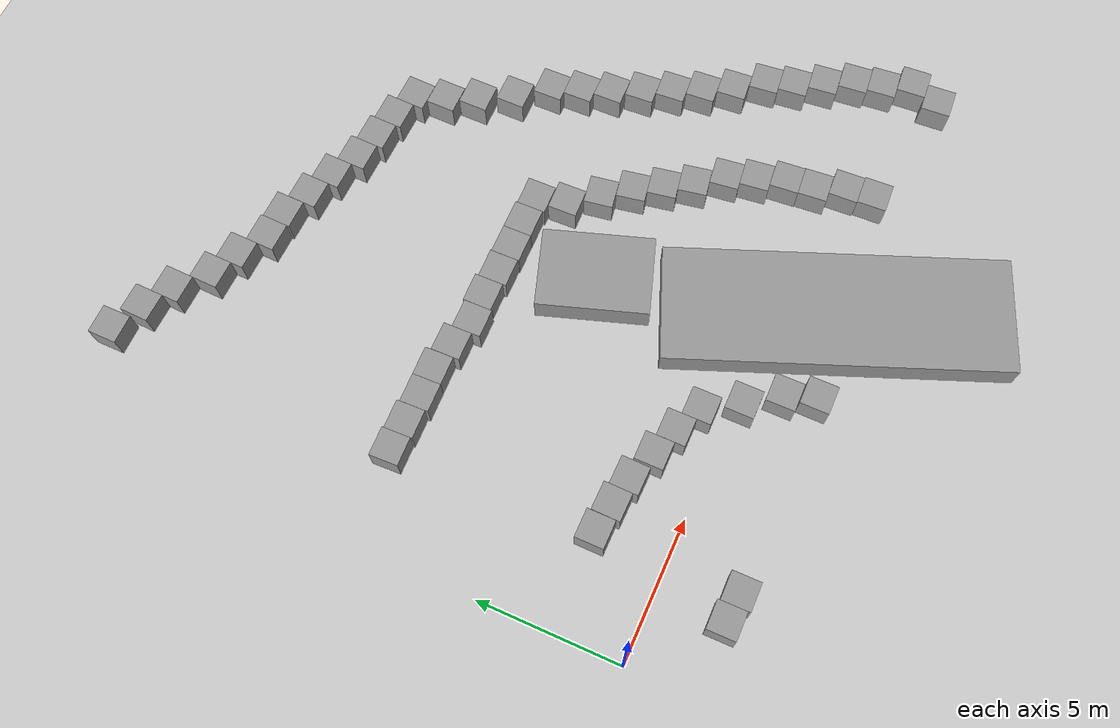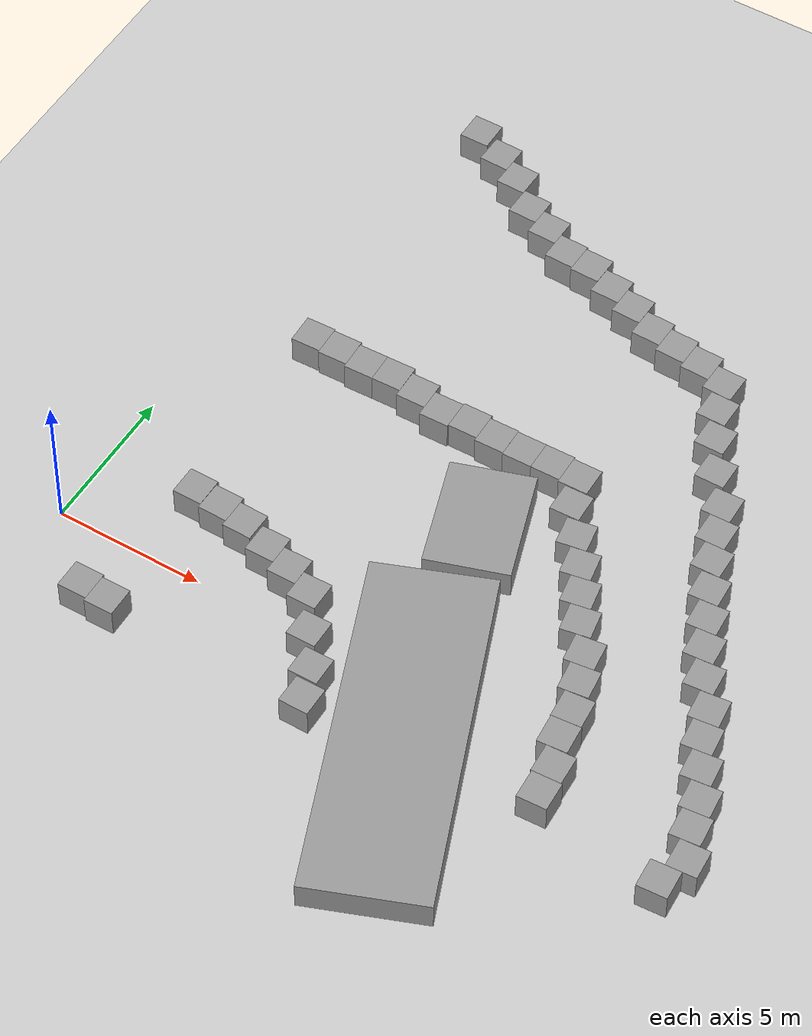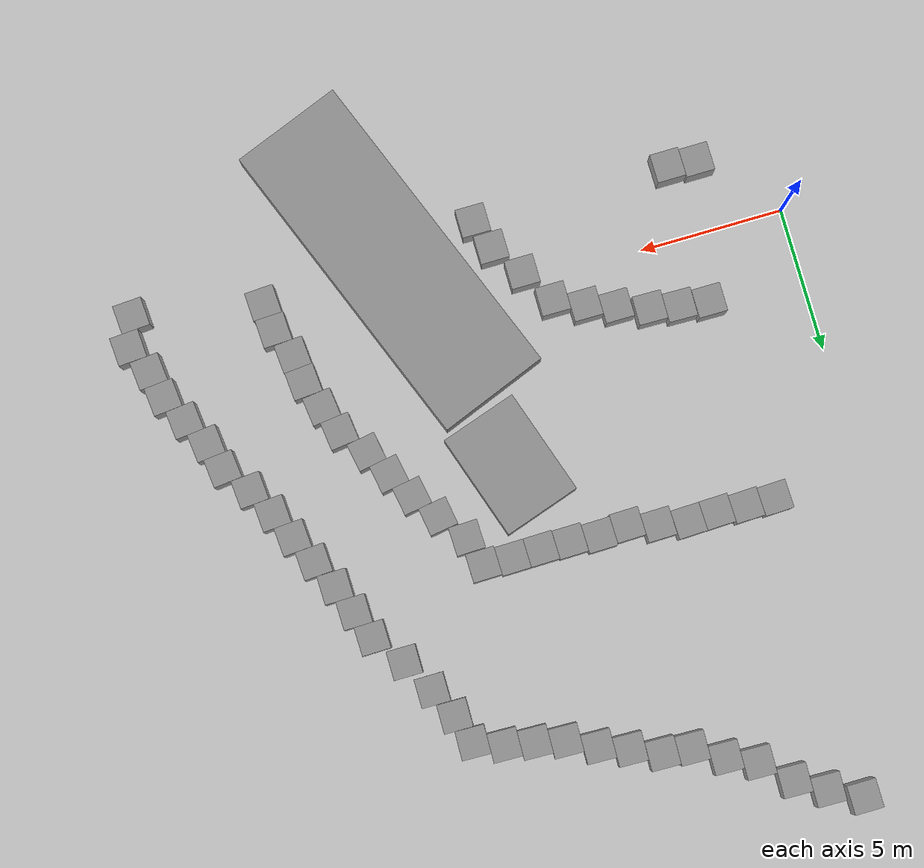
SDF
<sdf version="1.7">
 <world name="default">
  <model name="ground_plane">
   <static>1</static>
   <link name="link">
    <collision name="collision">
     <geometry><plane><normal>0 0 1</normal><size>100 100</size></plane></geometry>
     <surface>
      <contact><collide_bitmask>65535</collide_bitmask></contact>
      <friction><ode><mu>100</mu><mu2>50</mu2></ode></friction>
     </surface>
    </collision>
    <visual name="visual">
     <cast_shadows>0</cast_shadows>
     <geometry><plane><normal>0 0 1</normal><size>100 100</size></plane></geometry>
     <material>
      <script><uri>file://media/materials/scripts/gazebo.material</uri><name>Gazebo/Grey</name></script>
     </material>
    </visual>
   </link>
  </model>
  <model name="unit_box_4">
   <pose>3.37256 2.41731 0.499995 -0 -1e-05 -0.001944</pose>
   <link name="link">
    <inertial>
     <mass>1</mass>
     <inertia>
      <ixx>0.166667</ixx>
      <ixy>0</ixy>
      <ixz>0</ixz>
      <iyy>0.166667</iyy>
      <iyz>0</iyz>
      <izz>0.166667</izz>
     </inertia>
    </inertial>
    <collision name="collision"><geometry><box><size>1 1 1</size></box></geometry></collision>
    <visual name="visual">
     <geometry><box><size>1 1 1</size></box></geometry>
     <material>
      <script><name>Gazebo/Grey</name><uri>file://media/materials/scripts/gazebo.material</uri></script>
     </material>
    </visual>
   </link>
  </model>
  <model name="unit_box_14">
   <pose>2.39599 -2.35306 0.499995 0 1e-05 0.006255</pose>
   <link name="link">
    <inertial>
     <mass>1</mass>
     <inertia>
      <ixx>0.166667</ixx>
      <ixy>0</ixy>
      <ixz>0</ixz>
      <iyy>0.166667</iyy>
      <iyz>0</iyz>
      <izz>0.166667</izz>
     </inertia>
    </inertial>
    <collision name="collision"><geometry><box><size>1 1 1</size></box></geometry></collision>
    <visual name="visual">
     <geometry><box><size>1 1 1</size></box></geometry>
     <material>
      <script><name>Gazebo/Grey</name><uri>file://media/materials/scripts/gazebo.material</uri></script>
     </material>
    </visual>
   </link>
  </model>
  <model name="unit_box_15">
   <pose>3.39655 -2.43483 0.499995 1e-05 0 0.00622</pose>
   <link name="link">
    <inertial>
     <mass>1</mass>
     <inertia>
      <ixx>0.166667</ixx>
      <ixy>0</ixy>
      <ixz>0</ixz>
      <iyy>0.166667</iyy>
      <iyz>0</iyz>
      <izz>0.166667</izz>
     </inertia>
    </inertial>
    <collision name="collision"><geometry><box><size>1 1 1</size></box></geometry></collision>
    <visual name="visual">
     <geometry><box><size>1 1 1</size></box></geometry>
     <material>
      <script><name>Gazebo/Grey</name><uri>file://media/materials/scripts/gazebo.material</uri></script>
     </material>
    </visual>
   </link>
  </model>
  <model name="unit_box_20">
   <pose>4.38108 2.28355 0.499995 -1e-05 -0 -0.015499</pose>
   <link name="link">
    <inertial>
     <mass>1</mass>
     <inertia>
      <ixx>0.166667</ixx>
      <ixy>0</ixy>
      <ixz>0</ixz>
      <iyy>0.166667</iyy>
      <iyz>0</iyz>
      <izz>0.166667</izz>
     </inertia>
    </inertial>
    <collision name="collision"><geometry><box><size>1 1 1</size></box></geometry></collision>
    <visual name="visual">
     <geometry><box><size>1 1 1</size></box></geometry>
     <material>
      <script><name>Gazebo/Grey</name><uri>file://media/materials/scripts/gazebo.material</uri></script>
     </material>
    </visual>
   </link>
  </model>
  <model name="unit_box_21">
   <pose>5.37842 2.09653 0.499995 -1e-05 -0 -0.0155</pose>
   <link name="link">
    <inertial>
     <mass>1</mass>
     <inertia>
      <ixx>0.166667</ixx>
      <ixy>0</ixy>
      <ixz>0</ixz>
      <iyy>0.166667</iyy>
      <iyz>0</iyz>
      <izz>0.166667</izz>
     </inertia>
    </inertial>
    <collision name="collision"><geometry><box><size>1 1 1</size></box></geometry></collision>
    <visual name="visual">
     <geometry><box><size>1 1 1</size></box></geometry>
     <material>
      <script><name>Gazebo/Grey</name><uri>file://media/materials/scripts/gazebo.material</uri></script>
     </material>
    </visual>
   </link>
  </model>
  <model name="unit_box_22">
   <pose>6.44585 1.71084 0.499995 0 1e-05 5e-06</pose>
   <link name="link">
    <inertial>
     <mass>1</mass>
     <inertia>
      <ixx>0.166667</ixx>
      <ixy>0</ixy>
      <ixz>0</ixz>
      <iyy>0.166667</iyy>
      <iyz>0</iyz>
      <izz>0.166667</izz>
     </inertia>
    </inertial>
    <collision name="collision"><geometry><box><size>1 1 1</size></box></geometry></collision>
    <visual name="visual">
     <geometry><box><size>1 1 1</size></box></geometry>
     <material>
      <script><name>Gazebo/Grey</name><uri>file://media/materials/scripts/gazebo.material</uri></script>
     </material>
    </visual>
   </link>
  </model>
  <model name="unit_box_23">
   <pose>7.44649 1.36321 0.499995 -1e-05 -0 5e-06</pose>
   <link name="link">
    <inertial>
     <mass>1</mass>
     <inertia>
      <ixx>0.166667</ixx>
      <ixy>0</ixy>
      <ixz>0</ixz>
      <iyy>0.166667</iyy>
      <iyz>0</iyz>
      <izz>0.166667</izz>
     </inertia>
    </inertial>
    <collision name="collision"><geometry><box><size>1 1 1</size></box></geometry></collision>
    <visual name="visual">
     <geometry><box><size>1 1 1</size></box></geometry>
     <material>
      <script><name>Gazebo/Grey</name><uri>file://media/materials/scripts/gazebo.material</uri></script>
     </material>
    </visual>
   </link>
  </model>
  <model name="unit_box_24">
   <pose>8.44685 0.885138 0.499995 0 1e-05 5e-06</pose>
   <link name="link">
    <inertial>
     <mass>1</mass>
     <inertia>
      <ixx>0.166667</ixx>
      <ixy>0</ixy>
      <ixz>0</ixz>
      <iyy>0.166667</iyy>
      <iyz>0</iyz>
      <izz>0.166667</izz>
     </inertia>
    </inertial>
    <collision name="collision"><geometry><box><size>1 1 1</size></box></geometry></collision>
    <visual name="visual">
     <geometry><box><size>1 1 1</size></box></geometry>
     <material>
      <script><name>Gazebo/Grey</name><uri>file://media/materials/scripts/gazebo.material</uri></script>
     </material>
    </visual>
   </link>
  </model>
  <model name="unit_box_25">
   <pose>9.18635 -0.29044 0.499995 -1e-05 -0 5e-06</pose>
   <link name="link">
    <inertial>
     <mass>1</mass>
     <inertia>
      <ixx>0.166667</ixx>
      <ixy>0</ixy>
      <ixz>0</ixz>
      <iyy>0.166667</iyy>
      <iyz>0</iyz>
      <izz>0.166667</izz>
     </inertia>
    </inertial>
    <collision name="collision"><geometry><box><size>1 1 1</size></box></geometry></collision>
    <visual name="visual">
     <geometry><box><size>1 1 1</size></box></geometry>
     <material>
      <script><name>Gazebo/Grey</name><uri>file://media/materials/scripts/gazebo.material</uri></script>
     </material>
    </visual>
   </link>
  </model>
  <model name="unit_box_26">
   <pose>9.95454 -1.40481 0.499995 1e-05 -0 0.004582</pose>
   <link name="link">
    <inertial>
     <mass>1</mass>
     <inertia>
      <ixx>0.166667</ixx>
      <ixy>0</ixy>
      <ixz>0</ixz>
      <iyy>0.166667</iyy>
      <iyz>0</iyz>
      <izz>0.166667</izz>
     </inertia>
    </inertial>
    <collision name="collision"><geometry><box><size>1 1 1</size></box></geometry></collision>
    <visual name="visual">
     <geometry><box><size>1 1 1</size></box></geometry>
     <material>
      <script><name>Gazebo/Grey</name><uri>file://media/materials/scripts/gazebo.material</uri></script>
     </material>
    </visual>
   </link>
  </model>
  <model name="unit_box_27">
   <pose>10.305 -2.44806 0.499995 -1e-05 -0 5e-06</pose>
   <link name="link">
    <inertial>
     <mass>1</mass>
     <inertia>
      <ixx>0.166667</ixx>
      <ixy>0</ixy>
      <ixz>0</ixz>
      <iyy>0.166667</iyy>
      <iyz>0</iyz>
      <izz>0.166667</izz>
     </inertia>
    </inertial>
    <collision name="collision"><geometry><box><size>1 1 1</size></box></geometry></collision>
    <visual name="visual">
     <geometry><box><size>1 1 1</size></box></geometry>
     <material>
      <script><name>Gazebo/Grey</name><uri>file://media/materials/scripts/gazebo.material</uri></script>
     </material>
    </visual>
   </link>
  </model>
  <model name="unit_box_32_clone_22">
   <pose>17.9148 -1.70228 0.5 0 -0 0.04637</pose>
   <link name="link">
    <inertial>
     <mass>1</mass>
     <inertia>
      <ixx>0.166667</ixx>
      <ixy>0</ixy>
      <ixz>0</ixz>
      <iyy>0.166667</iyy>
      <iyz>0</iyz>
      <izz>0.166667</izz>
     </inertia>
    </inertial>
    <collision name="collision"><geometry><box><size>1 1 1</size></box></geometry></collision>
    <visual name="visual">
     <geometry><box><size>1 1 1</size></box></geometry>
     <material>
      <script><name>Gazebo/Grey</name><uri>file://media/materials/scripts/gazebo.material</uri></script>
     </material>
    </visual>
   </link>
  </model>
  <model name="unit_box_32_clone_23">
   <pose>17.822 -0.705491 0.499995 -0 -1e-05 0.046421</pose>
   <link name="link">
    <inertial>
     <mass>1</mass>
     <inertia>
      <ixx>0.166667</ixx>
      <ixy>0</ixy>
      <ixz>0</ixz>
      <iyy>0.166667</iyy>
      <iyz>0</iyz>
      <izz>0.166667</izz>
     </inertia>
    </inertial>
    <collision name="collision"><geometry><box><size>1 1 1</size></box></geometry></collision>
    <visual name="visual">
     <geometry><box><size>1 1 1</size></box></geometry>
     <material>
      <script><name>Gazebo/Grey</name><uri>file://media/materials/scripts/gazebo.material</uri></script>
     </material>
    </visual>
   </link>
  </model>
  <model name="unit_box_32_clone_24">
   <pose>17.4264 0.282866 0.5 0 -0 0.081788</pose>
   <link name="link">
    <inertial>
     <mass>1</mass>
     <inertia>
      <ixx>0.166667</ixx>
      <ixy>0</ixy>
      <ixz>0</ixz>
      <iyy>0.166667</iyy>
      <iyz>0</iyz>
      <izz>0.166667</izz>
     </inertia>
    </inertial>
    <collision name="collision"><geometry><box><size>1 1 1</size></box></geometry></collision>
    <visual name="visual">
     <geometry><box><size>1 1 1</size></box></geometry>
     <material>
      <script><name>Gazebo/Grey</name><uri>file://media/materials/scripts/gazebo.material</uri></script>
     </material>
    </visual>
   </link>
  </model>
  <model name="unit_box_32_clone_25">
   <pose>17.3247 1.27792 0.5 0 -0 0.08186</pose>
   <link name="link">
    <inertial>
     <mass>1</mass>
     <inertia>
      <ixx>0.166667</ixx>
      <ixy>0</ixy>
      <ixz>0</ixz>
      <iyy>0.166667</iyy>
      <iyz>0</iyz>
      <izz>0.166667</izz>
     </inertia>
    </inertial>
    <collision name="collision"><geometry><box><size>1 1 1</size></box></geometry></collision>
    <visual name="visual">
     <geometry><box><size>1 1 1</size></box></geometry>
     <material>
      <script><name>Gazebo/Grey</name><uri>file://media/materials/scripts/gazebo.material</uri></script>
     </material>
    </visual>
   </link>
  </model>
  <model name="unit_box_32_clone_26">
   <pose>16.9722 2.26184 0.499995 -0 1e-05 0.121367</pose>
   <link name="link">
    <inertial>
     <mass>1</mass>
     <inertia>
      <ixx>0.166667</ixx>
      <ixy>0</ixy>
      <ixz>0</ixz>
      <iyy>0.166667</iyy>
      <iyz>0</iyz>
      <izz>0.166667</izz>
     </inertia>
    </inertial>
    <collision name="collision"><geometry><box><size>1 1 1</size></box></geometry></collision>
    <visual name="visual">
     <geometry><box><size>1 1 1</size></box></geometry>
     <material>
      <script><name>Gazebo/Grey</name><uri>file://media/materials/scripts/gazebo.material</uri></script>
     </material>
    </visual>
   </link>
  </model>
  <model name="unit_box_32_clone_27">
   <pose>16.6091 3.22503 0.5 0 -0 0.121596</pose>
   <link name="link">
    <inertial>
     <mass>1</mass>
     <inertia>
      <ixx>0.166667</ixx>
      <ixy>0</ixy>
      <ixz>0</ixz>
      <iyy>0.166667</iyy>
      <iyz>0</iyz>
      <izz>0.166667</izz>
     </inertia>
    </inertial>
    <collision name="collision"><geometry><box><size>1 1 1</size></box></geometry></collision>
    <visual name="visual">
     <geometry><box><size>1 1 1</size></box></geometry>
     <material>
      <script><name>Gazebo/Grey</name><uri>file://media/materials/scripts/gazebo.material</uri></script>
     </material>
    </visual>
   </link>
  </model>
  <model name="unit_box_32_clone_28">
   <pose>15.9248 4.1459 0.5 0 -0 0.175625</pose>
   <link name="link">
    <inertial>
     <mass>1</mass>
     <inertia>
      <ixx>0.166667</ixx>
      <ixy>0</ixy>
      <ixz>0</ixz>
      <iyy>0.166667</iyy>
      <iyz>0</iyz>
      <izz>0.166667</izz>
     </inertia>
    </inertial>
    <collision name="collision"><geometry><box><size>1 1 1</size></box></geometry></collision>
    <visual name="visual">
     <geometry><box><size>1 1 1</size></box></geometry>
     <material>
      <script><name>Gazebo/Grey</name><uri>file://media/materials/scripts/gazebo.material</uri></script>
     </material>
    </visual>
   </link>
  </model>
  <model name="unit_box_32_clone_29">
   <pose>15.4032 5.06902 0.499995 1e-05 -0 0.175627</pose>
   <link name="link">
    <inertial>
     <mass>1</mass>
     <inertia>
      <ixx>0.166667</ixx>
      <ixy>0</ixy>
      <ixz>0</ixz>
      <iyy>0.166667</iyy>
      <iyz>0</iyz>
      <izz>0.166667</izz>
     </inertia>
    </inertial>
    <collision name="collision"><geometry><box><size>1 1 1</size></box></geometry></collision>
    <visual name="visual">
     <geometry><box><size>1 1 1</size></box></geometry>
     <material>
      <script><name>Gazebo/Grey</name><uri>file://media/materials/scripts/gazebo.material</uri></script>
     </material>
    </visual>
   </link>
  </model>
  <model name="unit_box_32_clone_30">
   <pose>14.8669 5.98949 0.499995 1e-05 -0 0.175604</pose>
   <link name="link">
    <inertial>
     <mass>1</mass>
     <inertia>
      <ixx>0.166667</ixx>
      <ixy>0</ixy>
      <ixz>0</ixz>
      <iyy>0.166667</iyy>
      <iyz>0</iyz>
      <izz>0.166667</izz>
     </inertia>
    </inertial>
    <collision name="collision"><geometry><box><size>1 1 1</size></box></geometry></collision>
    <visual name="visual">
     <geometry><box><size>1 1 1</size></box></geometry>
     <material>
      <script><name>Gazebo/Grey</name><uri>file://media/materials/scripts/gazebo.material</uri></script>
     </material>
    </visual>
   </link>
  </model>
  <model name="unit_box_32_clone_31">
   <pose>14.216 6.89907 0.499996 -9e-06 0 0.157062</pose>
   <link name="link">
    <inertial>
     <mass>1</mass>
     <inertia>
      <ixx>0.166667</ixx>
      <ixy>0</ixy>
      <ixz>0</ixz>
      <iyy>0.166667</iyy>
      <iyz>0</iyz>
      <izz>0.166667</izz>
     </inertia>
    </inertial>
    <collision name="collision"><geometry><box><size>1 1 1</size></box></geometry></collision>
    <visual name="visual">
     <geometry><box><size>1 1 1</size></box></geometry>
     <material>
      <script><name>Gazebo/Grey</name><uri>file://media/materials/scripts/gazebo.material</uri></script>
     </material>
    </visual>
   </link>
  </model>
  <model name="unit_box_32_clone_32">
   <pose>13.4893 7.85691 0.5 0 -0 0.029155</pose>
   <link name="link">
    <inertial>
     <mass>1</mass>
     <inertia>
      <ixx>0.166667</ixx>
      <ixy>0</ixy>
      <ixz>0</ixz>
      <iyy>0.166667</iyy>
      <iyz>0</iyz>
      <izz>0.166667</izz>
     </inertia>
    </inertial>
    <collision name="collision"><geometry><box><size>1 1 1</size></box></geometry></collision>
    <visual name="visual">
     <geometry><box><size>1 1 1</size></box></geometry>
     <material>
      <script><name>Gazebo/Grey</name><uri>file://media/materials/scripts/gazebo.material</uri></script>
     </material>
    </visual>
   </link>
  </model>
  <model name="unit_box_32_clone_33">
   <pose>13.1982 8.87655 0.499995 1e-05 -0 0.01535</pose>
   <link name="link">
    <inertial>
     <mass>1</mass>
     <inertia>
      <ixx>0.166667</ixx>
      <ixy>0</ixy>
      <ixz>0</ixz>
      <iyy>0.166667</iyy>
      <iyz>0</iyz>
      <izz>0.166667</izz>
     </inertia>
    </inertial>
    <collision name="collision"><geometry><box><size>1 1 1</size></box></geometry></collision>
    <visual name="visual">
     <geometry><box><size>1 1 1</size></box></geometry>
     <material>
      <script><name>Gazebo/Grey</name><uri>file://media/materials/scripts/gazebo.material</uri></script>
     </material>
    </visual>
   </link>
  </model>
  <model name="unit_box_32_clone_62">
   <pose>22.3137 -2.52257 0.499995 0 1e-05 0.065898</pose>
   <link name="link">
    <inertial>
     <mass>1</mass>
     <inertia>
      <ixx>0.166667</ixx>
      <ixy>0</ixy>
      <ixz>0</ixz>
      <iyy>0.166667</iyy>
      <iyz>0</iyz>
      <izz>0.166667</izz>
     </inertia>
    </inertial>
    <collision name="collision"><geometry><box><size>1 1 1</size></box></geometry></collision>
    <visual name="visual">
     <geometry><box><size>1 1 1</size></box></geometry>
     <material>
      <script><name>Gazebo/Grey</name><uri>file://media/materials/scripts/gazebo.material</uri></script>
     </material>
    </visual>
   </link>
  </model>
  <model name="unit_box_32_clone_63">
   <pose>22.6975 -1.49507 0.499995 0 1e-05 0.065895</pose>
   <link name="link">
    <inertial>
     <mass>1</mass>
     <inertia>
      <ixx>0.166667</ixx>
      <ixy>0</ixy>
      <ixz>0</ixz>
      <iyy>0.166667</iyy>
      <iyz>0</iyz>
      <izz>0.166667</izz>
     </inertia>
    </inertial>
    <collision name="collision"><geometry><box><size>1 1 1</size></box></geometry></collision>
    <visual name="visual">
     <geometry><box><size>1 1 1</size></box></geometry>
     <material>
      <script><name>Gazebo/Grey</name><uri>file://media/materials/scripts/gazebo.material</uri></script>
     </material>
    </visual>
   </link>
  </model>
  <model name="unit_box_32_clone_64">
   <pose>22.2486 -0.518726 0.5 0 -0 0.096344</pose>
   <link name="link">
    <inertial>
     <mass>1</mass>
     <inertia>
      <ixx>0.166667</ixx>
      <ixy>0</ixy>
      <ixz>0</ixz>
      <iyy>0.166667</iyy>
      <iyz>0</iyz>
      <izz>0.166667</izz>
     </inertia>
    </inertial>
    <collision name="collision"><geometry><box><size>1 1 1</size></box></geometry></collision>
    <visual name="visual">
     <geometry><box><size>1 1 1</size></box></geometry>
     <material>
      <script><name>Gazebo/Grey</name><uri>file://media/materials/scripts/gazebo.material</uri></script>
     </material>
    </visual>
   </link>
  </model>
  <model name="unit_box_32_clone_65">
   <pose>22.0112 0.462989 0.499995 0 -1e-05 0.096353</pose>
   <link name="link">
    <inertial>
     <mass>1</mass>
     <inertia>
      <ixx>0.166667</ixx>
      <ixy>0</ixy>
      <ixz>0</ixz>
      <iyy>0.166667</iyy>
      <iyz>0</iyz>
      <izz>0.166667</izz>
     </inertia>
    </inertial>
    <collision name="collision"><geometry><box><size>1 1 1</size></box></geometry></collision>
    <visual name="visual">
     <geometry><box><size>1 1 1</size></box></geometry>
     <material>
      <script><name>Gazebo/Grey</name><uri>file://media/materials/scripts/gazebo.material</uri></script>
     </material>
    </visual>
   </link>
  </model>
  <model name="unit_box_32_clone_66">
   <pose>21.5224 1.42156 0.5 0 -0 0.106877</pose>
   <link name="link">
    <inertial>
     <mass>1</mass>
     <inertia>
      <ixx>0.166667</ixx>
      <ixy>0</ixy>
      <ixz>0</ixz>
      <iyy>0.166667</iyy>
      <iyz>0</iyz>
      <izz>0.166667</izz>
     </inertia>
    </inertial>
    <collision name="collision"><geometry><box><size>1 1 1</size></box></geometry></collision>
    <visual name="visual">
     <geometry><box><size>1 1 1</size></box></geometry>
     <material>
      <script><name>Gazebo/Grey</name><uri>file://media/materials/scripts/gazebo.material</uri></script>
     </material>
    </visual>
   </link>
  </model>
  <model name="unit_box_32_clone_67">
   <pose>21.0281 2.37426 0.5 0 -0 0.106894</pose>
   <link name="link">
    <inertial>
     <mass>1</mass>
     <inertia>
      <ixx>0.166667</ixx>
      <ixy>0</ixy>
      <ixz>0</ixz>
      <iyy>0.166667</iyy>
      <iyz>0</iyz>
      <izz>0.166667</izz>
     </inertia>
    </inertial>
    <collision name="collision"><geometry><box><size>1 1 1</size></box></geometry></collision>
    <visual name="visual">
     <geometry><box><size>1 1 1</size></box></geometry>
     <material>
      <script><name>Gazebo/Grey</name><uri>file://media/materials/scripts/gazebo.material</uri></script>
     </material>
    </visual>
   </link>
  </model>
  <model name="unit_box_32_clone_68">
   <pose>20.724 3.34739 0.5 0 -0 0.106952</pose>
   <link name="link">
    <inertial>
     <mass>1</mass>
     <inertia>
      <ixx>0.166667</ixx>
      <ixy>0</ixy>
      <ixz>0</ixz>
      <iyy>0.166667</iyy>
      <iyz>0</iyz>
      <izz>0.166667</izz>
     </inertia>
    </inertial>
    <collision name="collision"><geometry><box><size>1 1 1</size></box></geometry></collision>
    <visual name="visual">
     <geometry><box><size>1 1 1</size></box></geometry>
     <material>
      <script><name>Gazebo/Grey</name><uri>file://media/materials/scripts/gazebo.material</uri></script>
     </material>
    </visual>
   </link>
  </model>
  <model name="unit_box_32_clone_69">
   <pose>20.0439 4.29385 0.5 0 -0 0.079277</pose>
   <link name="link">
    <inertial>
     <mass>1</mass>
     <inertia>
      <ixx>0.166667</ixx>
      <ixy>0</ixy>
      <ixz>0</ixz>
      <iyy>0.166667</iyy>
      <iyz>0</iyz>
      <izz>0.166667</izz>
     </inertia>
    </inertial>
    <collision name="collision"><geometry><box><size>1 1 1</size></box></geometry></collision>
    <visual name="visual">
     <geometry><box><size>1 1 1</size></box></geometry>
     <material>
      <script><name>Gazebo/Grey</name><uri>file://media/materials/scripts/gazebo.material</uri></script>
     </material>
    </visual>
   </link>
  </model>
  <model name="unit_box_32_clone_70">
   <pose>19.5211 5.26005 0.5 0 -0 0.070104</pose>
   <link name="link">
    <inertial>
     <mass>1</mass>
     <inertia>
      <ixx>0.166667</ixx>
      <ixy>0</ixy>
      <ixz>0</ixz>
      <iyy>0.166667</iyy>
      <iyz>0</iyz>
      <izz>0.166667</izz>
     </inertia>
    </inertial>
    <collision name="collision"><geometry><box><size>1 1 1</size></box></geometry></collision>
    <visual name="visual">
     <geometry><box><size>1 1 1</size></box></geometry>
     <material>
      <script><name>Gazebo/Grey</name><uri>file://media/materials/scripts/gazebo.material</uri></script>
     </material>
    </visual>
   </link>
  </model>
  <model name="unit_box_32_clone_71">
   <pose>19.0888 6.23225 0.5 0 -0 0.069936</pose>
   <link name="link">
    <inertial>
     <mass>1</mass>
     <inertia>
      <ixx>0.166667</ixx>
      <ixy>0</ixy>
      <ixz>0</ixz>
      <iyy>0.166667</iyy>
      <iyz>0</iyz>
      <izz>0.166667</izz>
     </inertia>
    </inertial>
    <collision name="collision"><geometry><box><size>1 1 1</size></box></geometry></collision>
    <visual name="visual">
     <geometry><box><size>1 1 1</size></box></geometry>
     <material>
      <script><name>Gazebo/Grey</name><uri>file://media/materials/scripts/gazebo.material</uri></script>
     </material>
    </visual>
   </link>
  </model>
  <model name="unit_box_32_clone_72">
   <pose>18.6259 7.20626 0.499995 0 -1e-05 0.061955</pose>
   <link name="link">
    <inertial>
     <mass>1</mass>
     <inertia>
      <ixx>0.166667</ixx>
      <ixy>0</ixy>
      <ixz>0</ixz>
      <iyy>0.166667</iyy>
      <iyz>0</iyz>
      <izz>0.166667</izz>
     </inertia>
    </inertial>
    <collision name="collision"><geometry><box><size>1 1 1</size></box></geometry></collision>
    <visual name="visual">
     <geometry><box><size>1 1 1</size></box></geometry>
     <material>
      <script><name>Gazebo/Grey</name><uri>file://media/materials/scripts/gazebo.material</uri></script>
     </material>
    </visual>
   </link>
  </model>
  <model name="unit_box_32_clone_73">
   <pose>18.1671 8.20073 0.499995 -0 1e-05 0.019098</pose>
   <link name="link">
    <inertial>
     <mass>1</mass>
     <inertia>
      <ixx>0.166667</ixx>
      <ixy>0</ixy>
      <ixz>0</ixz>
      <iyy>0.166667</iyy>
      <iyz>0</iyz>
      <izz>0.166667</izz>
     </inertia>
    </inertial>
    <collision name="collision"><geometry><box><size>1 1 1</size></box></geometry></collision>
    <visual name="visual">
     <geometry><box><size>1 1 1</size></box></geometry>
     <material>
      <script><name>Gazebo/Grey</name><uri>file://media/materials/scripts/gazebo.material</uri></script>
     </material>
    </visual>
   </link>
  </model>
  <model name="unit_box_32_clone_74">
   <pose>17.7908 9.19385 0.499995 0 -1e-05 0.018831</pose>
   <link name="link">
    <inertial>
     <mass>1</mass>
     <inertia>
      <ixx>0.166667</ixx>
      <ixy>0</ixy>
      <ixz>0</ixz>
      <iyy>0.166667</iyy>
      <iyz>0</iyz>
      <izz>0.166667</izz>
     </inertia>
    </inertial>
    <collision name="collision"><geometry><box><size>1 1 1</size></box></geometry></collision>
    <visual name="visual">
     <geometry><box><size>1 1 1</size></box></geometry>
     <material>
      <script><name>Gazebo/Grey</name><uri>file://media/materials/scripts/gazebo.material</uri></script>
     </material>
    </visual>
   </link>
  </model>
  <model name="unit_box_32_clone_75">
   <pose>17.4381 10.1874 0.499995 0 -1e-05 0.018837</pose>
   <link name="link">
    <inertial>
     <mass>1</mass>
     <inertia>
      <ixx>0.166667</ixx>
      <ixy>0</ixy>
      <ixz>0</ixz>
      <iyy>0.166667</iyy>
      <iyz>0</iyz>
      <izz>0.166667</izz>
     </inertia>
    </inertial>
    <collision name="collision"><geometry><box><size>1 1 1</size></box></geometry></collision>
    <visual name="visual">
     <geometry><box><size>1 1 1</size></box></geometry>
     <material>
      <script><name>Gazebo/Grey</name><uri>file://media/materials/scripts/gazebo.material</uri></script>
     </material>
    </visual>
   </link>
  </model>
  <model name="unit_box_32_clone_76">
   <pose>16.6369 11.2615 0.499995 1e-05 0 0.001329</pose>
   <link name="link">
    <inertial>
     <mass>1</mass>
     <inertia>
      <ixx>0.166667</ixx>
      <ixy>0</ixy>
      <ixz>0</ixz>
      <iyy>0.166667</iyy>
      <iyz>0</iyz>
      <izz>0.166667</izz>
     </inertia>
    </inertial>
    <collision name="collision"><geometry><box><size>1 1 1</size></box></geometry></collision>
    <visual name="visual">
     <geometry><box><size>1 1 1</size></box></geometry>
     <material>
      <script><name>Gazebo/Grey</name><uri>file://media/materials/scripts/gazebo.material</uri></script>
     </material>
    </visual>
   </link>
  </model>
  <model name="unit_box_32_clone_77">
   <pose>16 12.4104 0.499995 1e-05 -0 0.001324</pose>
   <link name="link">
    <inertial>
     <mass>1</mass>
     <inertia>
      <ixx>0.166667</ixx>
      <ixy>0</ixy>
      <ixz>0</ixz>
      <iyy>0.166667</iyy>
      <iyz>0</iyz>
      <izz>0.166667</izz>
     </inertia>
    </inertial>
    <collision name="collision"><geometry><box><size>1 1 1</size></box></geometry></collision>
    <visual name="visual">
     <geometry><box><size>1 1 1</size></box></geometry>
     <material>
      <script><name>Gazebo/Grey</name><uri>file://media/materials/scripts/gazebo.material</uri></script>
     </material>
    </visual>
   </link>
  </model>
  <model name="unit_box_32_clone_78">
   <pose>15.5142 13.4334 0.499995 -0 -1e-05 -0.008252</pose>
   <link name="link">
    <inertial>
     <mass>1</mass>
     <inertia>
      <ixx>0.166667</ixx>
      <ixy>0</ixy>
      <ixz>0</ixz>
      <iyy>0.166667</iyy>
      <iyz>0</iyz>
      <izz>0.166667</izz>
     </inertia>
    </inertial>
    <collision name="collision"><geometry><box><size>1 1 1</size></box></geometry></collision>
    <visual name="visual">
     <geometry><box><size>1 1 1</size></box></geometry>
     <material>
      <script><name>Gazebo/Grey</name><uri>file://media/materials/scripts/gazebo.material</uri></script>
     </material>
    </visual>
   </link>
  </model>
  <model name="unit_box_32_clone_78_clone">
   <pose>15.1792 14.4473 0.499995 -0 1e-05 -0.025634</pose>
   <link name="link">
    <inertial>
     <mass>1</mass>
     <inertia>
      <ixx>0.166667</ixx>
      <ixy>0</ixy>
      <ixz>0</ixz>
      <iyy>0.166667</iyy>
      <iyz>0</iyz>
      <izz>0.166667</izz>
     </inertia>
    </inertial>
    <collision name="collision"><geometry><box><size>1 1 1</size></box></geometry></collision>
    <visual name="visual">
     <geometry><box><size>1 1 1</size></box></geometry>
     <material>
      <script><name>Gazebo/Grey</name><uri>file://media/materials/scripts/gazebo.material</uri></script>
     </material>
    </visual>
   </link>
  </model>
  <model name="unit_box_32_clone_78_clone_0">
   <pose>14.1883 14.8167 0.499995 1e-05 -0 -0.025672</pose>
   <link name="link">
    <inertial>
     <mass>1</mass>
     <inertia>
      <ixx>0.166667</ixx>
      <ixy>0</ixy>
      <ixz>0</ixz>
      <iyy>0.166667</iyy>
      <iyz>0</iyz>
      <izz>0.166667</izz>
     </inertia>
    </inertial>
    <collision name="collision"><geometry><box><size>1 1 1</size></box></geometry></collision>
    <visual name="visual">
     <geometry><box><size>1 1 1</size></box></geometry>
     <material>
      <script><name>Gazebo/Grey</name><uri>file://media/materials/scripts/gazebo.material</uri></script>
     </material>
    </visual>
   </link>
  </model>
  <model name="unit_box_32_clone_78_clone_1">
   <pose>13.1928 15.0087 0.5 0 0 -0.026163</pose>
   <link name="link">
    <inertial>
     <mass>1</mass>
     <inertia>
      <ixx>0.166667</ixx>
      <ixy>0</ixy>
      <ixz>0</ixz>
      <iyy>0.166667</iyy>
      <iyz>0</iyz>
      <izz>0.166667</izz>
     </inertia>
    </inertial>
    <collision name="collision"><geometry><box><size>1 1 1</size></box></geometry></collision>
    <visual name="visual">
     <geometry><box><size>1 1 1</size></box></geometry>
     <material>
      <script><name>Gazebo/Grey</name><uri>file://media/materials/scripts/gazebo.material</uri></script>
     </material>
    </visual>
   </link>
  </model>
  <model name="unit_box_32_clone_78_clone_2">
   <pose>12.1985 15.2466 0.499995 -1e-05 -0 -0.026654</pose>
   <link name="link">
    <inertial>
     <mass>1</mass>
     <inertia>
      <ixx>0.166667</ixx>
      <ixy>0</ixy>
      <ixz>0</ixz>
      <iyy>0.166667</iyy>
      <iyz>0</iyz>
      <izz>0.166667</izz>
     </inertia>
    </inertial>
    <collision name="collision"><geometry><box><size>1 1 1</size></box></geometry></collision>
    <visual name="visual">
     <geometry><box><size>1 1 1</size></box></geometry>
     <material>
      <script><name>Gazebo/Grey</name><uri>file://media/materials/scripts/gazebo.material</uri></script>
     </material>
    </visual>
   </link>
  </model>
  <model name="unit_box_32_clone_78_clone_3">
   <pose>11.2109 15.7269 0.499995 -0 -1e-05 -0.027525</pose>
   <link name="link">
    <inertial>
     <mass>1</mass>
     <inertia>
      <ixx>0.166667</ixx>
      <ixy>0</ixy>
      <ixz>0</ixz>
      <iyy>0.166667</iyy>
      <iyz>0</iyz>
      <izz>0.166667</izz>
     </inertia>
    </inertial>
    <collision name="collision"><geometry><box><size>1 1 1</size></box></geometry></collision>
    <visual name="visual">
     <geometry><box><size>1 1 1</size></box></geometry>
     <material>
      <script><name>Gazebo/Grey</name><uri>file://media/materials/scripts/gazebo.material</uri></script>
     </material>
    </visual>
   </link>
  </model>
  <model name="unit_box_32_clone_78_clone_4">
   <pose>10.2209 16.104 0.499995 0 -1e-05 -0.027539</pose>
   <link name="link">
    <inertial>
     <mass>1</mass>
     <inertia>
      <ixx>0.166667</ixx>
      <ixy>0</ixy>
      <ixz>0</ixz>
      <iyy>0.166667</iyy>
      <iyz>0</iyz>
      <izz>0.166667</izz>
     </inertia>
    </inertial>
    <collision name="collision"><geometry><box><size>1 1 1</size></box></geometry></collision>
    <visual name="visual">
     <geometry><box><size>1 1 1</size></box></geometry>
     <material>
      <script><name>Gazebo/Grey</name><uri>file://media/materials/scripts/gazebo.material</uri></script>
     </material>
    </visual>
   </link>
  </model>
  <model name="unit_box_32_clone_78_clone_5">
   <pose>9.22749 16.5398 0.499995 -1e-05 -0 -0.024646</pose>
   <link name="link">
    <inertial>
     <mass>1</mass>
     <inertia>
      <ixx>0.166667</ixx>
      <ixy>0</ixy>
      <ixz>0</ixz>
      <iyy>0.166667</iyy>
      <iyz>0</iyz>
      <izz>0.166667</izz>
     </inertia>
    </inertial>
    <collision name="collision"><geometry><box><size>1 1 1</size></box></geometry></collision>
    <visual name="visual">
     <geometry><box><size>1 1 1</size></box></geometry>
     <material>
      <script><name>Gazebo/Grey</name><uri>file://media/materials/scripts/gazebo.material</uri></script>
     </material>
    </visual>
   </link>
  </model>
  <model name="unit_box_32_clone_78_clone_6">
   <pose>8.22963 16.6393 0.499995 0 -1e-05 -0.024646</pose>
   <link name="link">
    <inertial>
     <mass>1</mass>
     <inertia>
      <ixx>0.166667</ixx>
      <ixy>0</ixy>
      <ixz>0</ixz>
      <iyy>0.166667</iyy>
      <iyz>0</iyz>
      <izz>0.166667</izz>
     </inertia>
    </inertial>
    <collision name="collision"><geometry><box><size>1 1 1</size></box></geometry></collision>
    <visual name="visual">
     <geometry><box><size>1 1 1</size></box></geometry>
     <material>
      <script><name>Gazebo/Grey</name><uri>file://media/materials/scripts/gazebo.material</uri></script>
     </material>
    </visual>
   </link>
  </model>
  <model name="unit_box_32_clone_78_clone_7">
   <pose>7.24435 17.2475 0.5 0 0 -0.024982</pose>
   <link name="link">
    <inertial>
     <mass>1</mass>
     <inertia>
      <ixx>0.166667</ixx>
      <ixy>0</ixy>
      <ixz>0</ixz>
      <iyy>0.166667</iyy>
      <iyz>0</iyz>
      <izz>0.166667</izz>
     </inertia>
    </inertial>
    <collision name="collision"><geometry><box><size>1 1 1</size></box></geometry></collision>
    <visual name="visual">
     <geometry><box><size>1 1 1</size></box></geometry>
     <material>
      <script><name>Gazebo/Grey</name><uri>file://media/materials/scripts/gazebo.material</uri></script>
     </material>
    </visual>
   </link>
  </model>
  <model name="unit_box_32_clone_33_clone">
   <pose>12.1973 8.92208 0.499995 1e-05 0 0.015371</pose>
   <link name="link">
    <inertial>
     <mass>1</mass>
     <inertia>
      <ixx>0.166667</ixx>
      <ixy>0</ixy>
      <ixz>0</ixz>
      <iyy>0.166667</iyy>
      <iyz>0</iyz>
      <izz>0.166667</izz>
     </inertia>
    </inertial>
    <collision name="collision"><geometry><box><size>1 1 1</size></box></geometry></collision>
    <visual name="visual">
     <geometry><box><size>1 1 1</size></box></geometry>
     <material>
      <script><name>Gazebo/Grey</name><uri>file://media/materials/scripts/gazebo.material</uri></script>
     </material>
    </visual>
   </link>
  </model>
  <model name="unit_box_32_clone_33_clone_clone">
   <pose>11.1974 8.9079 0.499995 -1e-05 -0 0.015371</pose>
   <link name="link">
    <inertial>
     <mass>1</mass>
     <inertia>
      <ixx>0.166667</ixx>
      <ixy>0</ixy>
      <ixz>0</ixz>
      <iyy>0.166667</iyy>
      <iyz>0</iyz>
      <izz>0.166667</izz>
     </inertia>
    </inertial>
    <collision name="collision"><geometry><box><size>1 1 1</size></box></geometry></collision>
    <visual name="visual">
     <geometry><box><size>1 1 1</size></box></geometry>
     <material>
      <script><name>Gazebo/Grey</name><uri>file://media/materials/scripts/gazebo.material</uri></script>
     </material>
    </visual>
   </link>
  </model>
  <model name="unit_box_32_clone_33_clone_clone_0">
   <pose>10.1964 8.92765 0.499995 -1e-05 -0 0.015458</pose>
   <link name="link">
    <inertial>
     <mass>1</mass>
     <inertia>
      <ixx>0.166667</ixx>
      <ixy>0</ixy>
      <ixz>0</ixz>
      <iyy>0.166667</iyy>
      <iyz>0</iyz>
      <izz>0.166667</izz>
     </inertia>
    </inertial>
    <collision name="collision"><geometry><box><size>1 1 1</size></box></geometry></collision>
    <visual name="visual">
     <geometry><box><size>1 1 1</size></box></geometry>
     <material>
      <script><name>Gazebo/Grey</name><uri>file://media/materials/scripts/gazebo.material</uri></script>
     </material>
    </visual>
   </link>
  </model>
  <model name="unit_box_32_clone_33_clone_clone_1">
   <pose>9.19474 9.01144 0.499995 1e-05 -0 0.015722</pose>
   <link name="link">
    <inertial>
     <mass>1</mass>
     <inertia>
      <ixx>0.166667</ixx>
      <ixy>0</ixy>
      <ixz>0</ixz>
      <iyy>0.166667</iyy>
      <iyz>0</iyz>
      <izz>0.166667</izz>
     </inertia>
    </inertial>
    <collision name="collision"><geometry><box><size>1 1 1</size></box></geometry></collision>
    <visual name="visual">
     <geometry><box><size>1 1 1</size></box></geometry>
     <material>
      <script><name>Gazebo/Grey</name><uri>file://media/materials/scripts/gazebo.material</uri></script>
     </material>
    </visual>
   </link>
  </model>
  <model name="unit_box_32_clone_33_clone_clone_2">
   <pose>8.19473 8.93953 0.499995 1e-05 -0 0.017135</pose>
   <link name="link">
    <inertial>
     <mass>1</mass>
     <inertia>
      <ixx>0.166667</ixx>
      <ixy>0</ixy>
      <ixz>0</ixz>
      <iyy>0.166667</iyy>
      <iyz>0</iyz>
      <izz>0.166667</izz>
     </inertia>
    </inertial>
    <collision name="collision"><geometry><box><size>1 1 1</size></box></geometry></collision>
    <visual name="visual">
     <geometry><box><size>1 1 1</size></box></geometry>
     <material>
      <script><name>Gazebo/Grey</name><uri>file://media/materials/scripts/gazebo.material</uri></script>
     </material>
    </visual>
   </link>
  </model>
  <model name="unit_box_32_clone_33_clone_clone_3">
   <pose>7.18983 9.21216 0.499995 0 1e-05 0.017173</pose>
   <link name="link">
    <inertial>
     <mass>1</mass>
     <inertia>
      <ixx>0.166667</ixx>
      <ixy>0</ixy>
      <ixz>0</ixz>
      <iyy>0.166667</iyy>
      <iyz>0</iyz>
      <izz>0.166667</izz>
     </inertia>
    </inertial>
    <collision name="collision"><geometry><box><size>1 1 1</size></box></geometry></collision>
    <visual name="visual">
     <geometry><box><size>1 1 1</size></box></geometry>
     <material>
      <script><name>Gazebo/Grey</name><uri>file://media/materials/scripts/gazebo.material</uri></script>
     </material>
    </visual>
   </link>
  </model>
  <model name="unit_box_32_clone_33_clone_clone_4">
   <pose>6.18044 9.38407 0.499995 0 -1e-05 0.029791</pose>
   <link name="link">
    <inertial>
     <mass>1</mass>
     <inertia>
      <ixx>0.166667</ixx>
      <ixy>0</ixy>
      <ixz>0</ixz>
      <iyy>0.166667</iyy>
      <iyz>0</iyz>
      <izz>0.166667</izz>
     </inertia>
    </inertial>
    <collision name="collision"><geometry><box><size>1 1 1</size></box></geometry></collision>
    <visual name="visual">
     <geometry><box><size>1 1 1</size></box></geometry>
     <material>
      <script><name>Gazebo/Grey</name><uri>file://media/materials/scripts/gazebo.material</uri></script>
     </material>
    </visual>
   </link>
  </model>
  <model name="unit_box_32_clone_33_clone_clone_5">
   <pose>5.18082 9.35431 0.499995 0 -1e-05 0.029853</pose>
   <link name="link">
    <inertial>
     <mass>1</mass>
     <inertia>
      <ixx>0.166667</ixx>
      <ixy>0</ixy>
      <ixz>0</ixz>
      <iyy>0.166667</iyy>
      <iyz>0</iyz>
      <izz>0.166667</izz>
     </inertia>
    </inertial>
    <collision name="collision"><geometry><box><size>1 1 1</size></box></geometry></collision>
    <visual name="visual">
     <geometry><box><size>1 1 1</size></box></geometry>
     <material>
      <script><name>Gazebo/Grey</name><uri>file://media/materials/scripts/gazebo.material</uri></script>
     </material>
    </visual>
   </link>
  </model>
  <model name="unit_box_32_clone_33_clone_clone_6">
   <pose>4.17744 9.4206 0.499995 0 -1e-05 0.031683</pose>
   <link name="link">
    <inertial>
     <mass>1</mass>
     <inertia>
      <ixx>0.166667</ixx>
      <ixy>0</ixy>
      <ixz>0</ixz>
      <iyy>0.166667</iyy>
      <iyz>0</iyz>
      <izz>0.166667</izz>
     </inertia>
    </inertial>
    <collision name="collision"><geometry><box><size>1 1 1</size></box></geometry></collision>
    <visual name="visual">
     <geometry><box><size>1 1 1</size></box></geometry>
     <material>
      <script><name>Gazebo/Grey</name><uri>file://media/materials/scripts/gazebo.material</uri></script>
     </material>
    </visual>
   </link>
  </model>
  <model name="unit_box_32_clone_33_clone_clone_7">
   <pose>3.17563 9.44581 0.499995 -1e-05 -0 0.032664</pose>
   <link name="link">
    <inertial>
     <mass>1</mass>
     <inertia>
      <ixx>0.166667</ixx>
      <ixy>0</ixy>
      <ixz>0</ixz>
      <iyy>0.166667</iyy>
      <iyz>0</iyz>
      <izz>0.166667</izz>
     </inertia>
    </inertial>
    <collision name="collision"><geometry><box><size>1 1 1</size></box></geometry></collision>
    <visual name="visual">
     <geometry><box><size>1 1 1</size></box></geometry>
     <material>
      <script><name>Gazebo/Grey</name><uri>file://media/materials/scripts/gazebo.material</uri></script>
     </material>
    </visual>
   </link>
  </model>
  <model name="unit_box_32_clone_33_clone_clone_20_clone_0">
   <pose>6.25533 17.7002 0.499995 1e-05 -0 -0.024989</pose>
   <link name="link">
    <inertial>
     <mass>1</mass>
     <inertia>
      <ixx>0.166667</ixx>
      <ixy>0</ixy>
      <ixz>0</ixz>
      <iyy>0.166667</iyy>
      <iyz>0</iyz>
      <izz>0.166667</izz>
     </inertia>
    </inertial>
    <collision name="collision"><geometry><box><size>1 1 1</size></box></geometry></collision>
    <visual name="visual">
     <geometry><box><size>1 1 1</size></box></geometry>
     <material>
      <script><name>Gazebo/Grey</name><uri>file://media/materials/scripts/gazebo.material</uri></script>
     </material>
    </visual>
   </link>
  </model>
  <model name="unit_box_32_clone_33_clone_clone_20_clone_1">
   <pose>5.27768 18.6032 0.499995 1e-05 -0 -0.025218</pose>
   <link name="link">
    <inertial>
     <mass>1</mass>
     <inertia>
      <ixx>0.166667</ixx>
      <ixy>0</ixy>
      <ixz>0</ixz>
      <iyy>0.166667</iyy>
      <iyz>0</iyz>
      <izz>0.166667</izz>
     </inertia>
    </inertial>
    <collision name="collision"><geometry><box><size>1 1 1</size></box></geometry></collision>
    <visual name="visual">
     <geometry><box><size>1 1 1</size></box></geometry>
     <material>
      <script><name>Gazebo/Grey</name><uri>file://media/materials/scripts/gazebo.material</uri></script>
     </material>
    </visual>
   </link>
  </model>
  <model name="unit_box_32_clone_33_clone_clone_20_clone_2">
   <pose>4.29234 19.1985 0.499995 1e-05 -0 -0.025149</pose>
   <link name="link">
    <inertial>
     <mass>1</mass>
     <inertia>
      <ixx>0.166667</ixx>
      <ixy>0</ixy>
      <ixz>0</ixz>
      <iyy>0.166667</iyy>
      <iyz>0</iyz>
      <izz>0.166667</izz>
     </inertia>
    </inertial>
    <collision name="collision"><geometry><box><size>1 1 1</size></box></geometry></collision>
    <visual name="visual">
     <geometry><box><size>1 1 1</size></box></geometry>
     <material>
      <script><name>Gazebo/Grey</name><uri>file://media/materials/scripts/gazebo.material</uri></script>
     </material>
    </visual>
   </link>
  </model>
  <model name="unit_box_32_clone_33_clone_clone_20_clone_3">
   <pose>3.19577 19.7632 0.499995 1e-05 0 0.001222</pose>
   <link name="link">
    <inertial>
     <mass>1</mass>
     <inertia>
      <ixx>0.166667</ixx>
      <ixy>0</ixy>
      <ixz>0</ixz>
      <iyy>0.166667</iyy>
      <iyz>0</iyz>
      <izz>0.166667</izz>
     </inertia>
    </inertial>
    <collision name="collision"><geometry><box><size>1 1 1</size></box></geometry></collision>
    <visual name="visual">
     <geometry><box><size>1 1 1</size></box></geometry>
     <material>
      <script><name>Gazebo/Grey</name><uri>file://media/materials/scripts/gazebo.material</uri></script>
     </material>
    </visual>
   </link>
  </model>
  <model name="unit_box_35">
   <pose>13.3908 -1.96617 0.499998 0 2e-06 0.372757</pose>
   <link name="link">
    <inertial>
     <mass>1</mass>
     <inertia>
      <ixx>0.166667</ixx>
      <ixy>0</ixy>
      <ixz>0</ixz>
      <iyy>0.166667</iyy>
      <iyz>0</iyz>
      <izz>0.166667</izz>
     </inertia>
    </inertial>
    <collision name="collision"><geometry><box><size>4.00064 11.6717 1</size></box></geometry></collision>
    <visual name="visual">
     <geometry><box><size>4.00064 11.6717 1</size></box></geometry>
     <material>
      <script><name>Gazebo/Grey</name><uri>file://media/materials/scripts/gazebo.material</uri></script>
     </material>
    </visual>
   </link>
  </model>
  <model name="unit_box_36">
   <pose>11.4047 5.89768 0.499995 -0 3e-06 0.318958</pose>
   <link name="link">
    <inertial>
     <mass>1</mass>
     <inertia>
      <ixx>0.166667</ixx>
      <ixy>0</ixy>
      <ixz>0</ixz>
      <iyy>0.166667</iyy>
      <iyz>0</iyz>
      <izz>0.166667</izz>
     </inertia>
    </inertial>
    <collision name="collision"><geometry><box><size>2.76372 3.83888 1</size></box></geometry></collision>
    <visual name="visual">
     <geometry><box><size>2.76372 3.83888 1</size></box></geometry>
     <material>
      <script><name>Gazebo/Grey</name><uri>file://media/materials/scripts/gazebo.material</uri></script>
     </material>
    </visual>
   </link>
  </model>
 </world>
</sdf>
